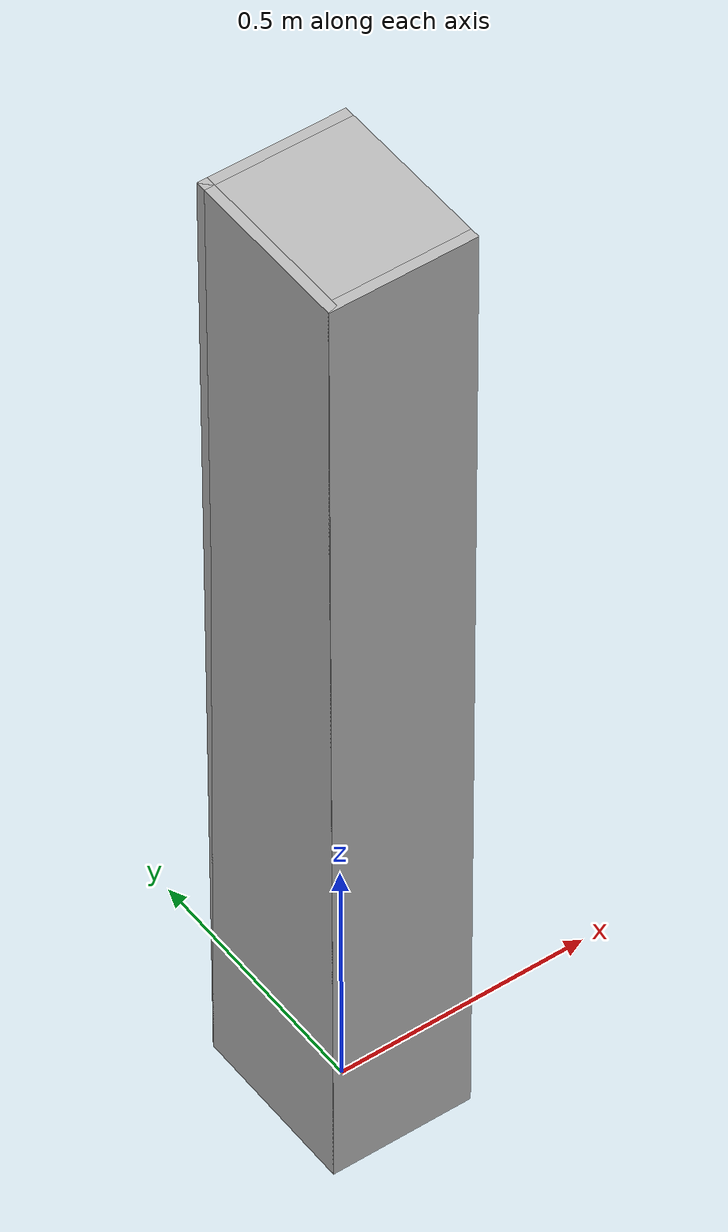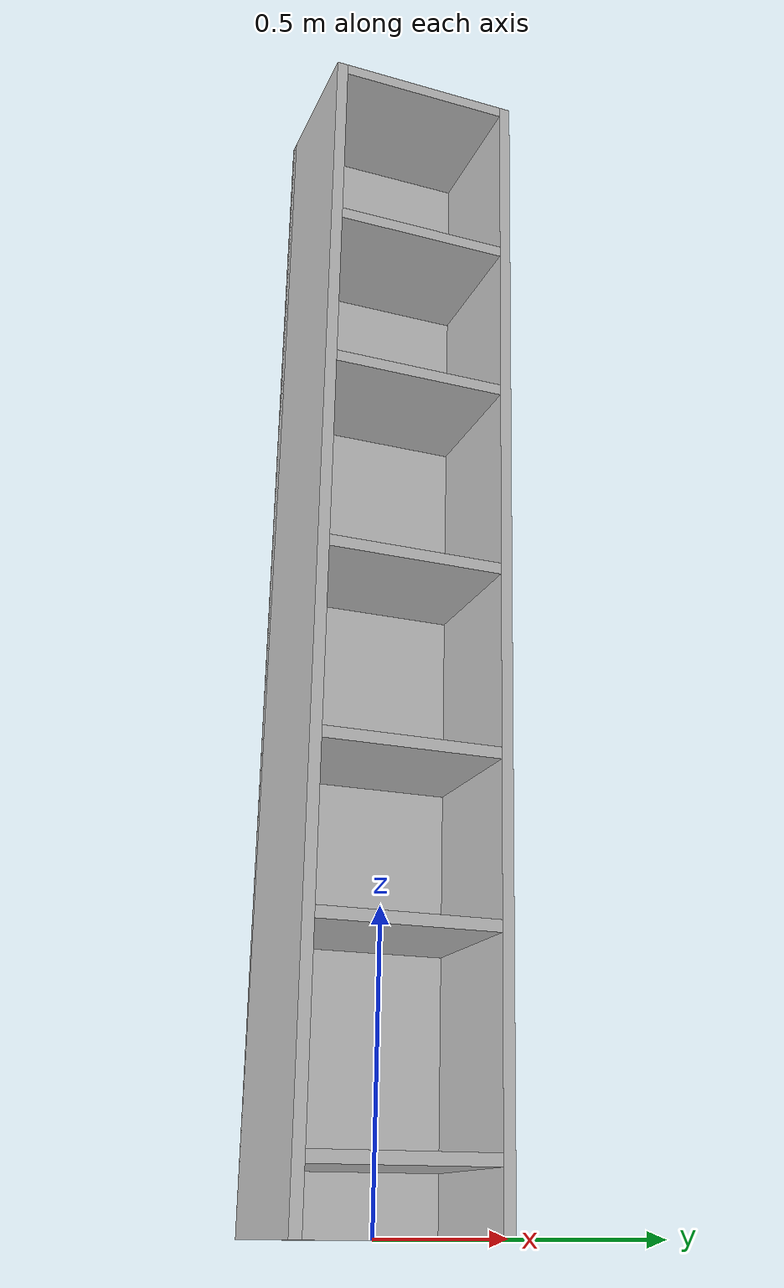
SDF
<?xml version="1.0" ?>
<sdf version="1.6">
  <model name="rwc2023/tall_cabinet">
    <static>true</static>
    <link name="1_link">
      <collision name="1_col">
        <geometry>
          <box>
            <size>0.28 0.02 2.02</size>
          </box>
        </geometry>
      </collision>
      <visual name="1_vis">
        <geometry>
          <box>
            <size>0.28 0.02 2.02</size>
          </box>
        </geometry>
      </visual>
      <pose>0.0 -0.1625 1.01 0 0 0</pose>
    </link>
    <link name="2_link">
      <collision name="2_col">
        <geometry>
          <box>
            <size>0.28 0.02 2.02</size>
          </box>
        </geometry>
      </collision>
      <visual name="2_vis">
        <geometry>
          <box>
            <size>0.28 0.02 2.02</size>
          </box>
        </geometry>
      </visual>
      <pose>0.0 0.1625 1.01 0 0 0</pose>
    </link>
    <link name="3_link">
      <collision name="3_col">
        <geometry>
          <box>
            <size>0.02 0.345 2.02</size>
          </box>
        </geometry>
      </collision>
      <visual name="3_vis">
        <geometry>
          <box>
            <size>0.02 0.345 2.02</size>
          </box>
        </geometry>
      </visual>
      <pose>-0.13 0.0 1.01 0 0 0</pose>
    </link>
    <link name="4_link">
      <collision name="4_col">
        <geometry>
          <box>
            <size>0.26 0.305 0.02</size>
          </box>
        </geometry>
      </collision>
      <visual name="4_vis">
        <geometry>
          <box>
            <size>0.26 0.305 0.02</size>
          </box>
        </geometry>
      </visual>
      <pose>0.01 0.0 2.01 0 0 0</pose>
    </link>
    <link name="5_link">
      <collision name="5_col">
        <geometry>
          <box>
            <size>0.26 0.305 0.02</size>
          </box>
        </geometry>
      </collision>
      <visual name="5_vis">
        <geometry>
          <box>
            <size>0.26 0.305 0.02</size>
          </box>
        </geometry>
      </visual>
      <pose>0.01 0.0 0.11 0 0 0</pose>
    </link>
    <link name="6_link">
      <collision name="6_col">
        <geometry>
          <box>
            <size>0.26 0.305 0.02</size>
          </box>
        </geometry>
      </collision>
      <visual name="6_vis">
        <geometry>
          <box>
            <size>0.26 0.305 0.02</size>
          </box>
        </geometry>
      </visual>
      <pose>0.01 0.0 0.455 0 0 0</pose>
    </link>
    <link name="7_link">
      <collision name="7_col">
        <geometry>
          <box>
            <size>0.26 0.305 0.02</size>
          </box>
        </geometry>
      </collision>
      <visual name="7_vis">
        <geometry>
          <box>
            <size>0.26 0.305 0.02</size>
          </box>
        </geometry>
      </visual>
      <pose>0.01 0.0 0.735 0 0 0</pose>
    </link>
    <link name="8_link">
      <collision name="8_col">
        <geometry>
          <box>
            <size>0.26 0.305 0.02</size>
          </box>
        </geometry>
      </collision>
      <visual name="8_vis">
        <geometry>
          <box>
            <size>0.26 0.305 0.02</size>
          </box>
        </geometry>
      </visual>
      <pose>0.01 0.0 1.06 0 0 0</pose>
    </link>
    <link name="9_link">
      <collision name="9_col">
        <geometry>
          <box>
            <size>0.26 0.305 0.02</size>
          </box>
        </geometry>
      </collision>
      <visual name="9_vis">
        <geometry>
          <box>
            <size>0.26 0.305 0.02</size>
          </box>
        </geometry>
      </visual>
      <pose>0.01 0.0 1.405 0 0 0</pose>
    </link>
    <link name="10_link">
      <collision name="10_col">
        <geometry>
          <box>
            <size>0.26 0.305 0.02</size>
          </box>
        </geometry>
      </collision>
      <visual name="10_vis">
        <geometry>
          <box>
            <size>0.26 0.305 0.02</size>
          </box>
        </geometry>
      </visual>
      <pose>0.01 0.0 1.695 0 0 0</pose>
    </link>
    <link name="in_front_of">
      <virtual_volume name="in_front_of_vv">
        <geometry>
          <box>
            <size>0.2 0.145 0.01</size>
          </box>
        </geometry>
        <pose>0.64 0.0 0.005 0 0 0</pose>
      </virtual_volume>
    </link>
    <link name="shelf1">
      <virtual_volume name="shelf1_vv">
        <geometry>
          <box>
            <size>0.24 0.245 0.25</size>
          </box>
        </geometry>
        <pose>0.01 0.0 0.265 0 0 0</pose>
      </virtual_volume>
    </link>
    <link name="shelf2">
      <virtual_volume name="shelf2_vv">
        <geometry>
          <box>
            <size>0.24 0.245 0.25</size>
          </box>
        </geometry>
        <pose>0.01 0.0 0.61 0 0 0</pose>
      </virtual_volume>
    </link>
    <link name="shelf3">
      <virtual_volume name="shelf3_vv">
        <geometry>
          <box>
            <size>0.24 0.245 0.25</size>
          </box>
        </geometry>
        <pose>0.01 0.0 0.89 0 0 0</pose>
      </virtual_volume>
    </link>
    <link name="shelf4">
      <virtual_volume name="shelf4_vv">
        <geometry>
          <box>
            <size>0.24 0.245 0.25</size>
          </box>
        </geometry>
        <pose>0.01 0.0 1.215 0 0 0</pose>
      </virtual_volume>
    </link>
    <link name="shelf5">
      <virtual_volume name="shelf5_vv">
        <geometry>
          <box>
            <size>0.24 0.245 0.25</size>
          </box>
        </geometry>
        <pose>0.01 0.0 1.56 0 0 0</pose>
      </virtual_volume>
    </link>
    <link name="shelf6">
      <virtual_volume name="shelf6_vv">
        <geometry>
          <box>
            <size>0.24 0.245 0.25</size>
          </box>
        </geometry>
        <pose>0.01 0.0 1.85 0 0 0</pose>
      </virtual_volume>
    </link>
    <link name="shelf7">
      <virtual_volume name="shelf7_vv">
        <geometry>
          <box>
            <size>0.24 0.245 0.25</size>
          </box>
        </geometry>
        <pose>0.01 0.0 2.15 0 0 0</pose>
      </virtual_volume>
    </link>
  </model>
</sdf>
